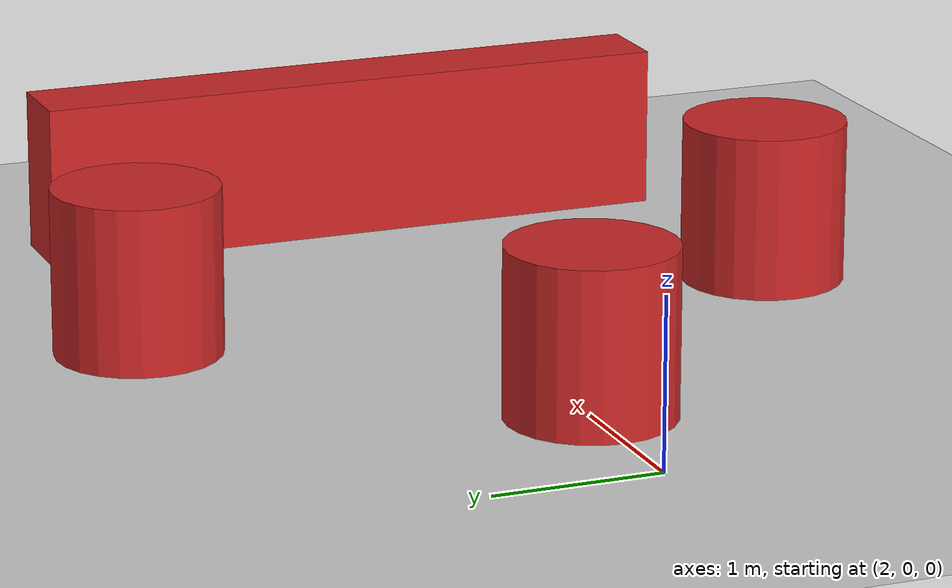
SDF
<?xml version="1.0" ?>
<sdf version="1.5">
  <world name="obstacle_world">
    <!-- Солнце и земля -->
    <include>
      <uri>model://sun</uri>
    </include>
    <include>
      <uri>model://ground_plane</uri>
    </include>

    <!-- Препятствие 1 -->
    <model name="obstacle1">
      <static>true</static>
      <pose>3 0 0.5 0 0 0</pose>
      <link name="link">
        <collision name="collision">
          <geometry>
            <cylinder>
              <radius>0.5</radius>
              <length>1.0</length>
            </cylinder>
          </geometry>
        </collision>
        <visual name="visual">
          <geometry>
            <cylinder>
              <radius>0.5</radius>
              <length>1.0</length>
            </cylinder>
          </geometry>
          <material>
            <script>
              <uri>file://media/materials/scripts/gazebo.material</uri>
              <name>Gazebo/Red</name>
            </script>
          </material>
        </visual>
      </link>
    </model>

    <!-- Препятствие 2 -->
    <model name="obstacle2">
      <static>true</static>
      <pose>5 2 0.5 0 0 0</pose>
      <link name="link">
        <collision name="collision">
          <geometry>
            <cylinder>
              <radius>0.5</radius>
              <length>1.0</length>
            </cylinder>
          </geometry>
        </collision>
        <visual name="visual">
          <geometry>
            <cylinder>
              <radius>0.5</radius>
              <length>1.0</length>
            </cylinder>
          </geometry>
          <material>
            <script>
              <uri>file://media/materials/scripts/gazebo.material</uri>
              <name>Gazebo/Red</name>
            </script>
          </material>
        </visual>
      </link>
    </model>

    <!-- Препятствие 3 -->
    <model name="obstacle3">
      <static>true</static>
      <pose>5 -2 0.5 0 0 0</pose>
      <link name="link">
        <collision name="collision">
          <geometry>
            <cylinder>
              <radius>0.5</radius>
              <length>1.0</length>
            </cylinder>
          </geometry>
        </collision>
        <visual name="visual">
          <geometry>
            <cylinder>
              <radius>0.5</radius>
              <length>1.0</length>
            </cylinder>
          </geometry>
          <material>
            <script>
              <uri>file://media/materials/scripts/gazebo.material</uri>
              <name>Gazebo/Red</name>
            </script>
          </material>
        </visual>
      </link>
    </model>

    <!-- Препятствие 4 - стена -->
    <model name="obstacle4">
      <static>true</static>
      <pose>7 0 0.5 0 0 0</pose>
      <link name="link">
        <collision name="collision">
          <geometry>
            <box>
              <size>0.5 4 1.0</size>
            </box>
          </geometry>
        </collision>
        <visual name="visual">
          <geometry>
            <box>
              <size>0.5 4 1.0</size>
            </box>
          </geometry>
          <material>
            <script>
              <uri>file://media/materials/scripts/gazebo.material</uri>
              <name>Gazebo/Red</name>
            </script>
          </material>
        </visual>
      </link>
    </model>
  </world>
</sdf>
